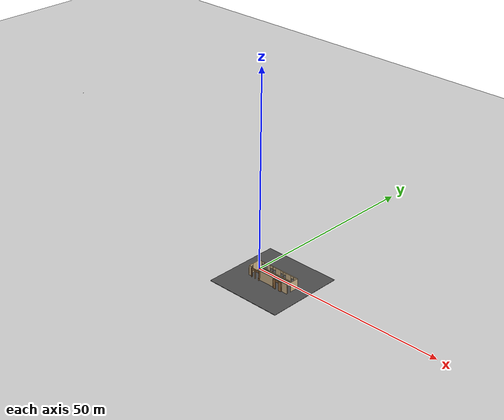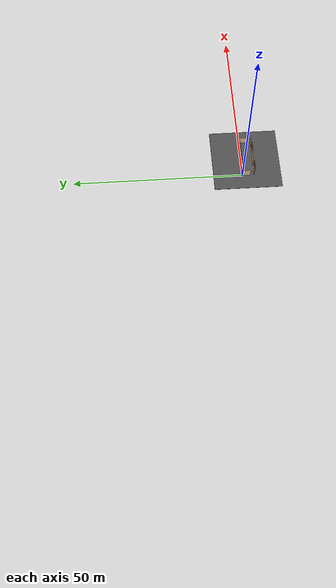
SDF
<sdf version="1.6">
 <world name="default">
  <light name="sun" type="directional">
   <pose>0 0 10 0 -0 0</pose>
   <diffuse>0.8 0.8 0.8 1</diffuse>
   <specular>0.1 0.1 0.1 1</specular>
   <attenuation>
    <range>1000</range>
    <constant>0.9</constant>
    <linear>0.01</linear>
    <quadratic>0.001</quadratic>
   </attenuation>
   <direction>-0.5 0.5 -1</direction>
  </light>
  <model name="ground_plane">
   <static>1</static>
   <link name="link">
    <collision name="collision">
     <geometry><plane><normal>0 0 1</normal><size>100 100</size></plane></geometry>
     <surface><friction><ode><mu>100</mu><mu2>50</mu2></ode></friction></surface>
    </collision>
    <visual name="visual">
     <cast_shadows>0</cast_shadows>
     <geometry><plane><normal>0 0 1</normal><size>100 100</size></plane></geometry>
     <material>
      <script><uri>file://media/materials/scripts/gazebo.material</uri><name>Gazebo/Grey</name></script>
     </material>
    </visual>
   </link>
  </model>
  <physics name="default_physics" default="0" type="ode">
   <max_step_size>0.01</max_step_size>
   <real_time_factor>1</real_time_factor>
   <real_time_update_rate>100</real_time_update_rate>
  </physics>
  <gravity>0 0 -9.8</gravity>
  <magnetic_field>6e-06 2.3e-05 -4.2e-05</magnetic_field>
  <atmosphere type="adiabatic"/>
  <scene><ambient>0.4 0.4 0.4 1</ambient><background>0.7 0.7 0.7 1</background><shadows>1</shadows></scene>
  <spherical_coordinates>
   <surface_model>EARTH_WGS84</surface_model>
   <latitude_deg>0</latitude_deg>
   <longitude_deg>0</longitude_deg>
   <elevation>0</elevation>
   <heading_deg>0</heading_deg>
  </spherical_coordinates>
  <model name="LawHall_Floor4.world">
   <pose>5.8834 -1.93186 0 0 -0 0</pose>
   <link name="Wall_0">
    <pose>0 1.8775 0 0 -0 0</pose>
    <visual name="Wall_0_Visual_0">
     <pose>-5.4555 0 1.25 0 -0 0</pose>
     <geometry><box><size>0.841 0.1 2.5</size></box></geometry>
     <material>
      <script><uri>file://media/materials/scripts/gazebo.material</uri><name>Gazebo/Grey</name></script>
      <ambient>0.921569 0.807843 0.615686 1</ambient>
     </material>
    </visual>
    <collision name="Wall_0_Collision_0">
     <geometry><box><size>0.841 0.1 2.5</size></box></geometry>
     <pose>-5.4555 0 1.25 0 -0 0</pose>
    </collision>
    <visual name="Wall_0_Visual_1">
     <pose>0.4205 0 0.47 0 -0 0</pose>
     <geometry><box><size>10.911 0.1 0.94</size></box></geometry>
     <material>
      <script><uri>file://media/materials/scripts/gazebo.material</uri><name>Gazebo/Grey</name></script>
      <ambient>0.921569 0.807843 0.615686 1</ambient>
     </material>
    </visual>
    <collision name="Wall_0_Collision_1">
     <geometry><box><size>10.911 0.1 0.94</size></box></geometry>
     <pose>0.4205 0 0.47 0 -0 0</pose>
    </collision>
    <visual name="Wall_0_Visual_2">
     <pose>-4.216 0 1.72 0 -0 0</pose>
     <geometry><box><size>0.178 0.1 1.56</size></box></geometry>
     <material>
      <script><uri>file://media/materials/scripts/gazebo.material</uri><name>Gazebo/Grey</name></script>
      <ambient>0.921569 0.807843 0.615686 1</ambient>
     </material>
    </visual>
    <collision name="Wall_0_Collision_2">
     <geometry><box><size>0.178 0.1 1.56</size></box></geometry>
     <pose>-4.216 0 1.72 0 -0 0</pose>
    </collision>
    <visual name="Wall_0_Visual_3">
     <pose>-2.911 0 1.72 0 -0 0</pose>
     <geometry><box><size>0.972 0.1 1.56</size></box></geometry>
     <material>
      <script><uri>file://media/materials/scripts/gazebo.material</uri><name>Gazebo/Grey</name></script>
      <ambient>0.921569 0.807843 0.615686 1</ambient>
     </material>
    </visual>
    <collision name="Wall_0_Collision_3">
     <geometry><box><size>0.972 0.1 1.56</size></box></geometry>
     <pose>-2.911 0 1.72 0 -0 0</pose>
    </collision>
    <visual name="Wall_0_Visual_4">
     <pose>-1.606 0 1.72 0 -0 0</pose>
     <geometry><box><size>0.178 0.1 1.56</size></box></geometry>
     <material>
      <script><uri>file://media/materials/scripts/gazebo.material</uri><name>Gazebo/Grey</name></script>
      <ambient>0.921569 0.807843 0.615686 1</ambient>
     </material>
    </visual>
    <collision name="Wall_0_Collision_4">
     <geometry><box><size>0.178 0.1 1.56</size></box></geometry>
     <pose>-1.606 0 1.72 0 -0 0</pose>
    </collision>
    <visual name="Wall_0_Visual_5">
     <pose>-0.0125 0 1.72 0 -0 0</pose>
     <geometry><box><size>1.549 0.1 1.56</size></box></geometry>
     <material>
      <script><uri>file://media/materials/scripts/gazebo.material</uri><name>Gazebo/Grey</name></script>
      <ambient>0.921569 0.807843 0.615686 1</ambient>
     </material>
    </visual>
    <collision name="Wall_0_Collision_5">
     <geometry><box><size>1.549 0.1 1.56</size></box></geometry>
     <pose>-0.0125 0 1.72 0 -0 0</pose>
    </collision>
    <visual name="Wall_0_Visual_6">
     <pose>1.5805 0 1.72 0 -0 0</pose>
     <geometry><box><size>0.177 0.1 1.56</size></box></geometry>
     <material>
      <script><uri>file://media/materials/scripts/gazebo.material</uri><name>Gazebo/Grey</name></script>
      <ambient>0.921569 0.807843 0.615686 1</ambient>
     </material>
    </visual>
    <collision name="Wall_0_Collision_6">
     <geometry><box><size>0.177 0.1 1.56</size></box></geometry>
     <pose>1.5805 0 1.72 0 -0 0</pose>
    </collision>
    <visual name="Wall_0_Visual_7">
     <pose>3.154 0 1.72 0 -0 0</pose>
     <geometry><box><size>1.51 0.1 1.56</size></box></geometry>
     <material>
      <script><uri>file://media/materials/scripts/gazebo.material</uri><name>Gazebo/Grey</name></script>
      <ambient>0.921569 0.807843 0.615686 1</ambient>
     </material>
    </visual>
    <collision name="Wall_0_Collision_7">
     <geometry><box><size>1.51 0.1 1.56</size></box></geometry>
     <pose>3.154 0 1.72 0 -0 0</pose>
    </collision>
    <visual name="Wall_0_Visual_8">
     <pose>4.729 0 1.72 0 -0 0</pose>
     <geometry><box><size>0.18 0.1 1.56</size></box></geometry>
     <material>
      <script><uri>file://media/materials/scripts/gazebo.material</uri><name>Gazebo/Grey</name></script>
      <ambient>0.921569 0.807843 0.615686 1</ambient>
     </material>
    </visual>
    <collision name="Wall_0_Collision_8">
     <geometry><box><size>0.18 0.1 1.56</size></box></geometry>
     <pose>4.729 0 1.72 0 -0 0</pose>
    </collision>
    <visual name="Wall_0_Visual_9">
     <pose>5.7125 0 1.72 0 -0 0</pose>
     <geometry><box><size>0.327 0.1 1.56</size></box></geometry>
     <material>
      <script><uri>file://media/materials/scripts/gazebo.material</uri><name>Gazebo/Grey</name></script>
      <ambient>0.921569 0.807843 0.615686 1</ambient>
     </material>
    </visual>
    <collision name="Wall_0_Collision_9">
     <geometry><box><size>0.327 0.1 1.56</size></box></geometry>
     <pose>5.7125 0 1.72 0 -0 0</pose>
    </collision>
    <visual name="Wall_0_Visual_10">
     <pose>-4.67 0 2.158 0 -0 0</pose>
     <geometry><box><size>0.73 0.1 0.684</size></box></geometry>
     <material>
      <script><uri>file://media/materials/scripts/gazebo.material</uri><name>Gazebo/Grey</name></script>
      <ambient>0.921569 0.807843 0.615686 1</ambient>
     </material>
    </visual>
    <collision name="Wall_0_Collision_10">
     <geometry><box><size>0.73 0.1 0.684</size></box></geometry>
     <pose>-4.67 0 2.158 0 -0 0</pose>
    </collision>
    <visual name="Wall_0_Visual_11">
     <pose>-3.762 0 2.158 0 -0 0</pose>
     <geometry><box><size>0.73 0.1 0.684</size></box></geometry>
     <material>
      <script><uri>file://media/materials/scripts/gazebo.material</uri><name>Gazebo/Grey</name></script>
      <ambient>0.921569 0.807843 0.615686 1</ambient>
     </material>
    </visual>
    <collision name="Wall_0_Collision_11">
     <geometry><box><size>0.73 0.1 0.684</size></box></geometry>
     <pose>-3.762 0 2.158 0 -0 0</pose>
    </collision>
    <visual name="Wall_0_Visual_12">
     <pose>-2.06 0 2.158 0 -0 0</pose>
     <geometry><box><size>0.73 0.1 0.684</size></box></geometry>
     <material>
      <script><uri>file://media/materials/scripts/gazebo.material</uri><name>Gazebo/Grey</name></script>
      <ambient>0.921569 0.807843 0.615686 1</ambient>
     </material>
    </visual>
    <collision name="Wall_0_Collision_12">
     <geometry><box><size>0.73 0.1 0.684</size></box></geometry>
     <pose>-2.06 0 2.158 0 -0 0</pose>
    </collision>
    <visual name="Wall_0_Visual_13">
     <pose>-1.152 0 2.158 0 -0 0</pose>
     <geometry><box><size>0.73 0.1 0.684</size></box></geometry>
     <material>
      <script><uri>file://media/materials/scripts/gazebo.material</uri><name>Gazebo/Grey</name></script>
      <ambient>0.921569 0.807843 0.615686 1</ambient>
     </material>
    </visual>
    <collision name="Wall_0_Collision_13">
     <geometry><box><size>0.73 0.1 0.684</size></box></geometry>
     <pose>-1.152 0 2.158 0 -0 0</pose>
    </collision>
    <visual name="Wall_0_Visual_14">
     <pose>1.127 0 2.158 0 -0 0</pose>
     <geometry><box><size>0.73 0.1 0.684</size></box></geometry>
     <material>
      <script><uri>file://media/materials/scripts/gazebo.material</uri><name>Gazebo/Grey</name></script>
      <ambient>0.921569 0.807843 0.615686 1</ambient>
     </material>
    </visual>
    <collision name="Wall_0_Collision_14">
     <geometry><box><size>0.73 0.1 0.684</size></box></geometry>
     <pose>1.127 0 2.158 0 -0 0</pose>
    </collision>
    <visual name="Wall_0_Visual_15">
     <pose>2.034 0 2.158 0 -0 0</pose>
     <geometry><box><size>0.73 0.1 0.684</size></box></geometry>
     <material>
      <script><uri>file://media/materials/scripts/gazebo.material</uri><name>Gazebo/Grey</name></script>
      <ambient>0.921569 0.807843 0.615686 1</ambient>
     </material>
    </visual>
    <collision name="Wall_0_Collision_15">
     <geometry><box><size>0.73 0.1 0.684</size></box></geometry>
     <pose>2.034 0 2.158 0 -0 0</pose>
    </collision>
    <visual name="Wall_0_Visual_16">
     <pose>4.274 0 2.158 0 -0 0</pose>
     <geometry><box><size>0.73 0.1 0.684</size></box></geometry>
     <material>
      <script><uri>file://media/materials/scripts/gazebo.material</uri><name>Gazebo/Grey</name></script>
      <ambient>0.921569 0.807843 0.615686 1</ambient>
     </material>
    </visual>
    <collision name="Wall_0_Collision_16">
     <geometry><box><size>0.73 0.1 0.684</size></box></geometry>
     <pose>4.274 0 2.158 0 -0 0</pose>
    </collision>
    <visual name="Wall_0_Visual_17">
     <pose>5.184 0 2.158 0 -0 0</pose>
     <geometry><box><size>0.73 0.1 0.684</size></box></geometry>
     <material>
      <script><uri>file://media/materials/scripts/gazebo.material</uri><name>Gazebo/Grey</name></script>
      <ambient>0.921569 0.807843 0.615686 1</ambient>
     </material>
    </visual>
    <collision name="Wall_0_Collision_17">
     <geometry><box><size>0.73 0.1 0.684</size></box></geometry>
     <pose>5.184 0 2.158 0 -0 0</pose>
    </collision>
   </link>
   <link name="Wall_12">
    <collision name="Wall_12_Collision">
     <geometry><box><size>0.379 0.1 2.5</size></box></geometry>
     <pose>0 0 1.25 0 -0 0</pose>
    </collision>
    <visual name="Wall_12_Visual">
     <pose>0 0 1.25 0 -0 0</pose>
     <geometry><box><size>0.379 0.1 2.5</size></box></geometry>
     <material>
      <script><uri>file://media/materials/scripts/gazebo.material</uri><name>Gazebo/Wood</name></script>
      <ambient>1 1 1 1</ambient>
     </material>
    </visual>
    <pose>4.251 -1.712 0 0 0 -1.5708</pose>
   </link>
   <link name="Wall_14">
    <pose>3.078 -1.8515 0 0 -0 3.14159</pose>
    <visual name="Wall_14_Visual_0">
     <pose>-0.836227 0 1.25 0 -0 0</pose>
     <geometry><box><size>0.773547 0.1 2.5</size></box></geometry>
     <material>
      <script><uri>file://media/materials/scripts/gazebo.material</uri><name>Gazebo/Wood</name></script>
      <ambient>1 1 1 1</ambient>
     </material>
    </visual>
    <collision name="Wall_14_Collision_0">
     <geometry><box><size>0.773547 0.1 2.5</size></box></geometry>
     <pose>-0.836227 0 1.25 0 -0 0</pose>
    </collision>
    <visual name="Wall_14_Visual_1">
     <pose>0.841773 0 1.25 0 -0 0</pose>
     <geometry><box><size>0.762453 0.1 2.5</size></box></geometry>
     <material>
      <script><uri>file://media/materials/scripts/gazebo.material</uri><name>Gazebo/Wood</name></script>
      <ambient>1 1 1 1</ambient>
     </material>
    </visual>
    <collision name="Wall_14_Collision_1">
     <geometry><box><size>0.762453 0.1 2.5</size></box></geometry>
     <pose>0.841773 0 1.25 0 -0 0</pose>
    </collision>
    <visual name="Wall_14_Visual_2">
     <pose>0.005547 0 2.25 0 -0 0</pose>
     <geometry><box><size>0.91 0.1 0.5</size></box></geometry>
     <material>
      <script><uri>file://media/materials/scripts/gazebo.material</uri><name>Gazebo/Wood</name></script>
      <ambient>1 1 1 1</ambient>
     </material>
    </visual>
    <collision name="Wall_14_Collision_2">
     <geometry><box><size>0.91 0.1 0.5</size></box></geometry>
     <pose>0.005547 0 2.25 0 -0 0</pose>
    </collision>
   </link>
   <link name="Wall_15">
    <collision name="Wall_15_Collision">
     <geometry><box><size>0.379 0.1 2.5</size></box></geometry>
     <pose>0 0 1.25 0 -0 0</pose>
    </collision>
    <visual name="Wall_15_Visual">
     <pose>0 0 1.25 0 -0 0</pose>
     <geometry><box><size>0.379 0.1 2.5</size></box></geometry>
     <material>
      <script><uri>file://media/materials/scripts/gazebo.material</uri><name>Gazebo/Wood</name></script>
      <ambient>1 1 1 1</ambient>
     </material>
    </visual>
    <pose>1.905 -1.712 0 0 -0 1.5708</pose>
   </link>
   <link name="Wall_17">
    <collision name="Wall_17_Collision">
     <geometry><box><size>4.445 0.1 2.5</size></box></geometry>
     <pose>0 0 1.25 0 -0 0</pose>
    </collision>
    <visual name="Wall_17_Visual">
     <pose>0 0 1.25 0 -0 0</pose>
     <geometry><box><size>4.445 0.1 2.5</size></box></geometry>
     <material>
      <script><uri>file://media/materials/scripts/gazebo.material</uri><name>Gazebo/Grey</name></script>
      <ambient>0.921569 0.807843 0.615686 1</ambient>
     </material>
    </visual>
    <pose>-0.2675 -1.5725 0 0 -0 3.14159</pose>
   </link>
   <link name="Wall_19">
    <collision name="Wall_19_Collision">
     <geometry><box><size>0.405 0.1 2.5</size></box></geometry>
     <pose>0 0 1.25 0 -0 0</pose>
    </collision>
    <visual name="Wall_19_Visual">
     <pose>0 0 1.25 0 -0 0</pose>
     <geometry><box><size>0.405 0.1 2.5</size></box></geometry>
     <material>
      <script><uri>file://media/materials/scripts/gazebo.material</uri><name>Gazebo/Wood</name></script>
      <ambient>1 1 1 1</ambient>
     </material>
    </visual>
    <pose>-2.44 -1.725 0 0 0 -1.5708</pose>
   </link>
   <link name="Wall_2">
    <pose>-5.826 0.1525 0 0 0 -1.5708</pose>
    <visual name="Wall_2_Visual_0">
     <pose>-0.61409 0 1.25 0 -0 0</pose>
     <geometry><box><size>2.32182 0.1 2.5</size></box></geometry>
     <material>
      <script><uri>file://media/materials/scripts/gazebo.material</uri><name>Gazebo/Grey</name></script>
      <ambient>0.921569 0.807843 0.615686 1</ambient>
     </material>
    </visual>
    <collision name="Wall_2_Collision_0">
     <geometry><box><size>2.32182 0.1 2.5</size></box></geometry>
     <pose>-0.61409 0 1.25 0 -0 0</pose>
    </collision>
    <visual name="Wall_2_Visual_1">
     <pose>1.63741 0 1.25 0 -0 0</pose>
     <geometry><box><size>0.27518 0.1 2.5</size></box></geometry>
     <material>
      <script><uri>file://media/materials/scripts/gazebo.material</uri><name>Gazebo/Grey</name></script>
      <ambient>0.921569 0.807843 0.615686 1</ambient>
     </material>
    </visual>
    <collision name="Wall_2_Collision_1">
     <geometry><box><size>0.27518 0.1 2.5</size></box></geometry>
     <pose>1.63741 0 1.25 0 -0 0</pose>
    </collision>
    <visual name="Wall_2_Visual_2">
     <pose>1.02332 0 2.25 0 -0 0</pose>
     <geometry><box><size>0.953 0.1 0.5</size></box></geometry>
     <material>
      <script><uri>file://media/materials/scripts/gazebo.material</uri><name>Gazebo/Grey</name></script>
      <ambient>0.921569 0.807843 0.615686 1</ambient>
     </material>
    </visual>
    <collision name="Wall_2_Collision_2">
     <geometry><box><size>0.953 0.1 0.5</size></box></geometry>
     <pose>1.02332 0 2.25 0 -0 0</pose>
    </collision>
   </link>
   <link name="Wall_21">
    <pose>-3.6015 -1.8775 0 0 -0 3.14159</pose>
    <visual name="Wall_21_Visual_0">
     <pose>-1.12023 0 1.25 0 -0 0</pose>
     <geometry><box><size>0.182546 0.1 2.5</size></box></geometry>
     <material>
      <script><uri>file://media/materials/scripts/gazebo.material</uri><name>Gazebo/Wood</name></script>
      <ambient>1 1 1 1</ambient>
     </material>
    </visual>
    <collision name="Wall_21_Collision_0">
     <geometry><box><size>0.182546 0.1 2.5</size></box></geometry>
     <pose>-1.12023 0 1.25 0 -0 0</pose>
    </collision>
    <visual name="Wall_21_Visual_1">
     <pose>0.007546 0 1.25 0 -0 0</pose>
     <geometry><box><size>0.273 0.1 2.5</size></box></geometry>
     <material>
      <script><uri>file://media/materials/scripts/gazebo.material</uri><name>Gazebo/Wood</name></script>
      <ambient>1 1 1 1</ambient>
     </material>
    </visual>
    <collision name="Wall_21_Collision_1">
     <geometry><box><size>0.273 0.1 2.5</size></box></geometry>
     <pose>0.007546 0 1.25 0 -0 0</pose>
    </collision>
    <visual name="Wall_21_Visual_2">
     <pose>1.12777 0 1.25 0 -0 0</pose>
     <geometry><box><size>0.167454 0.1 2.5</size></box></geometry>
     <material>
      <script><uri>file://media/materials/scripts/gazebo.material</uri><name>Gazebo/Wood</name></script>
      <ambient>1 1 1 1</ambient>
     </material>
    </visual>
    <collision name="Wall_21_Collision_2">
     <geometry><box><size>0.167454 0.1 2.5</size></box></geometry>
     <pose>1.12777 0 1.25 0 -0 0</pose>
    </collision>
    <visual name="Wall_21_Visual_3">
     <pose>-0.578954 0 2.25 0 -0 0</pose>
     <geometry><box><size>0.9 0.1 0.5</size></box></geometry>
     <material>
      <script><uri>file://media/materials/scripts/gazebo.material</uri><name>Gazebo/Wood</name></script>
      <ambient>1 1 1 1</ambient>
     </material>
    </visual>
    <collision name="Wall_21_Collision_3">
     <geometry><box><size>0.9 0.1 0.5</size></box></geometry>
     <pose>-0.578954 0 2.25 0 -0 0</pose>
    </collision>
    <visual name="Wall_21_Visual_4">
     <pose>0.594046 0 2.25 0 -0 0</pose>
     <geometry><box><size>0.9 0.1 0.5</size></box></geometry>
     <material>
      <script><uri>file://media/materials/scripts/gazebo.material</uri><name>Gazebo/Wood</name></script>
      <ambient>1 1 1 1</ambient>
     </material>
    </visual>
    <collision name="Wall_21_Collision_4">
     <geometry><box><size>0.9 0.1 0.5</size></box></geometry>
     <pose>0.594046 0 2.25 0 -0 0</pose>
    </collision>
   </link>
   <link name="Wall_23">
    <collision name="Wall_23_Collision">
     <geometry><box><size>0.405 0.1 2.5</size></box></geometry>
     <pose>0 0 1.25 0 -0 0</pose>
    </collision>
    <visual name="Wall_23_Visual">
     <pose>0 0 1.25 0 -0 0</pose>
     <geometry><box><size>0.405 0.1 2.5</size></box></geometry>
     <material>
      <script><uri>file://media/materials/scripts/gazebo.material</uri><name>Gazebo/Wood</name></script>
      <ambient>1 1 1 1</ambient>
     </material>
    </visual>
    <pose>-4.763 -1.725 0 0 -0 1.5708</pose>
   </link>
   <link name="Wall_27">
    <collision name="Wall_27_Collision">
     <geometry><box><size>1.163 0.1 2.5</size></box></geometry>
     <pose>0 0 1.25 0 -0 0</pose>
    </collision>
    <visual name="Wall_27_Visual">
     <pose>0 0 1.25 0 -0 0</pose>
     <geometry><box><size>1.163 0.1 2.5</size></box></geometry>
     <material>
      <script><uri>file://media/materials/scripts/gazebo.material</uri><name>Gazebo/Grey</name></script>
      <ambient>0.921569 0.807843 0.615686 1</ambient>
     </material>
    </visual>
    <pose>-5.2945 -1.5725 0 0 -0 0</pose>
   </link>
   <link name="Wall_31">
    <collision name="Wall_31_Collision">
     <geometry><box><size>11.702 0.05 0.94</size></box></geometry>
     <pose>0 0 0.47 0 -0 0</pose>
    </collision>
    <visual name="Wall_31_Visual">
     <pose>0 0 0.47 0 -0 0</pose>
     <geometry><box><size>11.702 0.05 0.94</size></box></geometry>
     <material>
      <script><uri>file://media/materials/scripts/gazebo.material</uri><name>Gazebo/Wood</name></script>
      <ambient>1 1 1 1</ambient>
     </material>
    </visual>
    <pose>0 1.4975 0 0 -0 0</pose>
   </link>
   <link name="Wall_6">
    <pose>5.826 0.1525 0 0 0 -1.5708</pose>
    <visual name="Wall_6_Visual_0">
     <pose>-0.61784 0 1.25 0 -0 0</pose>
     <geometry><box><size>2.31432 0.1 2.5</size></box></geometry>
     <material>
      <script><uri>file://media/materials/scripts/gazebo.material</uri><name>Gazebo/Grey</name></script>
      <ambient>0.921569 0.807843 0.615686 1</ambient>
     </material>
    </visual>
    <collision name="Wall_6_Collision_0">
     <geometry><box><size>2.31432 0.1 2.5</size></box></geometry>
     <pose>-0.61784 0 1.25 0 -0 0</pose>
    </collision>
    <visual name="Wall_6_Visual_1">
     <pose>1.62966 0 1.25 0 -0 0</pose>
     <geometry><box><size>0.29068 0.1 2.5</size></box></geometry>
     <material>
      <script><uri>file://media/materials/scripts/gazebo.material</uri><name>Gazebo/Grey</name></script>
      <ambient>0.921569 0.807843 0.615686 1</ambient>
     </material>
    </visual>
    <collision name="Wall_6_Collision_1">
     <geometry><box><size>0.29068 0.1 2.5</size></box></geometry>
     <pose>1.62966 0 1.25 0 -0 0</pose>
    </collision>
    <visual name="Wall_6_Visual_2">
     <pose>1.01182 0 2.25 0 -0 0</pose>
     <geometry><box><size>0.945 0.1 0.5</size></box></geometry>
     <material>
      <script><uri>file://media/materials/scripts/gazebo.material</uri><name>Gazebo/Grey</name></script>
      <ambient>0.921569 0.807843 0.615686 1</ambient>
     </material>
    </visual>
    <collision name="Wall_6_Collision_2">
     <geometry><box><size>0.945 0.1 0.5</size></box></geometry>
     <pose>1.01182 0 2.25 0 -0 0</pose>
    </collision>
   </link>
   <link name="Wall_8">
    <collision name="Wall_8_Collision">
     <geometry><box><size>1.675 0.1 2.5</size></box></geometry>
     <pose>0 0 1.25 0 -0 0</pose>
    </collision>
    <visual name="Wall_8_Visual">
     <pose>0 0 1.25 0 -0 0</pose>
     <geometry><box><size>1.675 0.1 2.5</size></box></geometry>
     <material>
      <script><uri>file://media/materials/scripts/gazebo.material</uri><name>Gazebo/Grey</name></script>
      <ambient>0.921569 0.807843 0.615686 1</ambient>
     </material>
    </visual>
    <pose>5.0385 -1.5725 0 0 -0 3.14159</pose>
   </link>
   <static>1</static>
  </model>
  <model name="camera">
   <link name="base_footprint">
    <inertial>
     <mass>1.00001</mass>
     <inertia><ixx>1</ixx><ixy>0</ixy><ixz>0</ixz><iyy>1</iyy><iyz>0</iyz><izz>1</izz></inertia>
    </inertial>
    <collision name="base_footprint_fixed_joint_lump__camera_link_collision">
     <geometry><box><size>0.5 0.5 0.5</size></box></geometry>
    </collision>
    <visual name="base_footprint_visual"><geometry><box><size>0.001 0.001 0.001</size></box></geometry></visual>
    <visual name="base_footprint_fixed_joint_lump__camera_link_visual_1">
     <geometry><box><size>0.1 0.1 0.04</size></box></geometry>
     <material><script><uri>__default__</uri><name>__default__</name></script></material>
    </visual>
    <sensor name="camera1" type="camera">
     <update_rate>30</update_rate>
     <camera name="head">
      <horizontal_fov>1.39626</horizontal_fov>
      <image><width>640</width><height>480</height><format>R8G8B8</format></image>
      <clip><near>0.02</near><far>300</far></clip>
      <noise><type>gaussian</type><mean>0</mean><stddev>0.007</stddev></noise>
     </camera>
     <plugin name="camera_controller" filename="libgazebo_ros_camera.so">
      <alwaysOn>true</alwaysOn>
      <updateRate>0.0</updateRate>
      <cameraName>cam_bot/camera1</cameraName>
      <imageTopicName>image_raw</imageTopicName>
      <cameraInfoTopicName>camera_info</cameraInfoTopicName>
      <frameName>camera_link</frameName>
      <hackBaseline>0.07</hackBaseline>
      <distortionK1>0.0</distortionK1>
      <distortionK2>0.0</distortionK2>
      <distortionK3>0.0</distortionK3>
      <distortionT1>0.0</distortionT1>
      <distortionT2>0.0</distortionT2>
      <robotNamespace>simbot</robotNamespace>
     </plugin>
    </sensor>
   </link>
   <static>0</static>
   <plugin name="object_controller" filename="libgazebo_ros_planar_move.so">
    <commandTopic>sim_cmd_vel</commandTopic>
    <odometryTopic>sim_odom</odometryTopic>
    <odometryFrame>sim_odom</odometryFrame>
    <odometryRate>20.0</odometryRate>
    <robotBaseFrame>base_footprint</robotBaseFrame>
    <robotNamespace>simbot</robotNamespace>
   </plugin>
   <pose>-110.793 36.587 0.249971 0 -0.000115 -3.1356</pose>
  </model>
  <model name="asphalt_plane_0">
   <static>1</static>
   <link name="link">
    <collision name="collision"><geometry><box><size>20 20 0.1</size></box></geometry></collision>
    <visual name="visual">
     <cast_shadows>0</cast_shadows>
     <geometry><box><size>20 20 0.1</size></box></geometry>
     <material>
      <script>
       <uri>model://asphalt_plane/materials/scripts</uri>
       <uri>model://asphalt_plane/materials/textures</uri>
       <name>vrc/asphalt</name>
      </script>
     </material>
    </visual>
   </link>
   <pose>5.53177 -1.50238 0 0 -0 0</pose>
  </model>
 </world>
</sdf>
